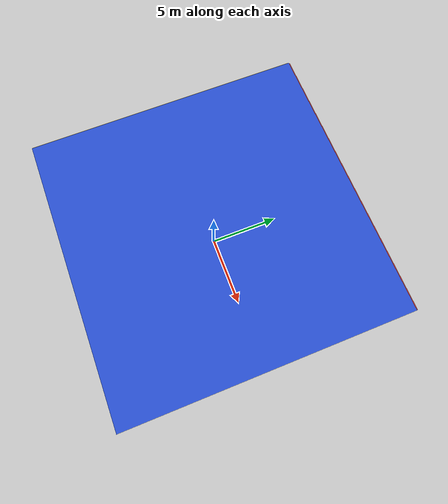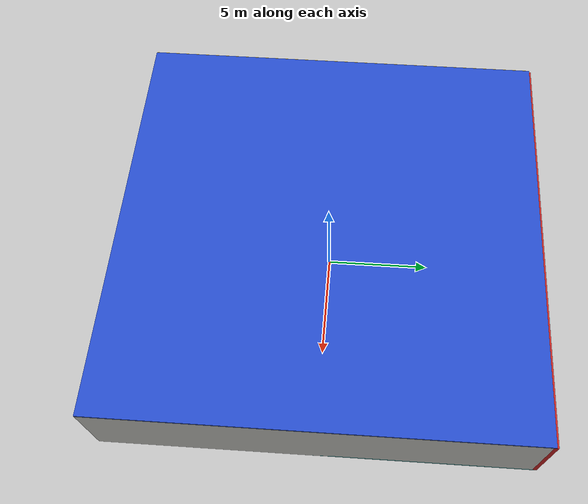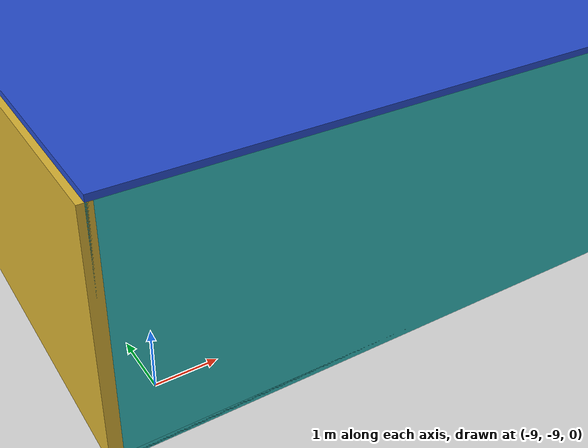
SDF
<sdf version="1.4">
 <world name="default">
  <physics type="ode">
   <max_step_size>0.001</max_step_size>
   <real_time_factor>1</real_time_factor>
   <real_time_update_rate>1000</real_time_update_rate>
   <gravity>0 0 -9.8</gravity>
  </physics>
  <scene><ambient>0.4 0.4 0.4 1</ambient><background>0.7 0.7 0.7 1</background><shadows>1</shadows></scene>
  <model name="Surrounding">
   <static>1</static>
   <link name="Ceiling">
    <collision name="Ceiling_Collision"><geometry><box><size>20 20 0.1</size></box></geometry></collision>
    <visual name="Ceiling_Visual">
     <geometry><box><size>20 20 0.1</size></box></geometry>
     <material>
      <script><uri>file://media/materials/scripts/gazebo.material</uri><name>Gazebo/Blue</name></script>
     </material>
    </visual>
    <pose>0 0 4.05 0 0 0</pose>
   </link>
   <link name="Wall_South">
    <collision name="Wall_South_Collision">
     <geometry><box><size>20 0 4</size></box></geometry>
     <pose>0 0 2 0 -0 0</pose>
    </collision>
    <visual name="Wall_South_Visual">
     <pose>0 0 2 0 -0 0</pose>
     <geometry><box><size>20 0 4</size></box></geometry>
     <material>
      <script><uri>file://media/materials/scripts/gazebo.material</uri><name>Gazebo/TurquoiseGlow</name></script>
     </material>
    </visual>
    <velocity_decay><linear>0</linear><angular>0</angular></velocity_decay>
    <pose>0 -10 0 0 -0 0</pose>
   </link>
   <link name="Wall_East">
    <collision name="Wall_21_Collision">
     <geometry><box><size>20 0 4</size></box></geometry>
     <pose>0 0 2 0 -0 0</pose>
    </collision>
    <visual name="Wall_21_Visual">
     <pose>0 0 2 0 -0 0</pose>
     <geometry><box><size>20 0 4</size></box></geometry>
     <material>
      <script><uri>file://media/materials/scripts/gazebo.material</uri><name>Gazebo/CeilingTiled</name></script>
     </material>
    </visual>
    <velocity_decay><linear>0</linear><angular>0</angular></velocity_decay>
    <pose>10 0 0 0 -0 1.5708</pose>
   </link>
   <link name="Wall_North">
    <collision name="Wall_22_Collision">
     <geometry><box><size>20 0.2 4</size></box></geometry>
     <pose>0 0 2 0 -0 0</pose>
    </collision>
    <visual name="Wall_22_Visual">
     <pose>0 0 2 0 -0 0</pose>
     <geometry><box><size>20 0.2 4</size></box></geometry>
     <material>
      <script><uri>file://media/materials/scripts/gazebo.material</uri><name>Gazebo/Red</name></script>
     </material>
    </visual>
    <velocity_decay><linear>0</linear><angular>0</angular></velocity_decay>
    <pose>0 10 0 0 -0 0</pose>
   </link>
   <link name="Wall_West">
    <collision name="Wall_23_Collision">
     <geometry><box><size>20 0.2 4</size></box></geometry>
     <pose>0 0 2 0 -0 0</pose>
    </collision>
    <visual name="Wall_23_Visual">
     <pose>0 0 2 0 -0 0</pose>
     <geometry><box><size>20 0.2 4</size></box></geometry>
     <material>
      <script><uri>file://media/materials/scripts/gazebo.material</uri><name>Gazebo/Gold</name></script>
     </material>
    </visual>
    <velocity_decay><linear>0</linear><angular>0</angular></velocity_decay>
    <pose>-10 0 0 0 0 -1.5708</pose>
   </link>
   <link name="Ground_link">
    <collision name="collision">
     <pose>0 0 .05 0 -0 0</pose>
     <geometry><box><size>20 20 0.1</size></box></geometry>
    </collision>
    <visual name="visual">
     <pose>0 0 .05 0 -0 0</pose>
     <geometry><box><size>20 20 0.1</size></box></geometry>
     <material>
      <script><uri>file://media/materials/scripts/gazebo.material</uri><name>Gazebo/Turquoise</name></script>
     </material>
    </visual>
   </link>
   <static>1</static>
  </model>
  <spherical_coordinates>
   <surface_model>EARTH_WGS84</surface_model>
   <latitude_deg>0</latitude_deg>
   <longitude_deg>0</longitude_deg>
   <elevation>0</elevation>
   <heading_deg>0</heading_deg>
  </spherical_coordinates>
  <light name="lightball_0" type="diffuse">
   <diffuse>0.8 0.8 0.8 1</diffuse>
   <specular>0.2 0.2 0.2 1</specular>
   <attenuation>
    <range>100</range>
    <constant>0.7</constant>
    <linear>0.01</linear>
    <quadratic>0.001</quadratic>
   </attenuation>
   <direction>-0.5 0.1 -0.9</direction>
   <pose>6.22918351982 -9.0889660355 2.44730647932 0 0 0</pose>
  </light>
  <light name="lightball_1" type="diffuse">
   <diffuse>0.8 0.8 0.8 1</diffuse>
   <specular>0.2 0.2 0.2 1</specular>
   <attenuation>
    <range>100</range>
    <constant>0.7</constant>
    <linear>0.01</linear>
    <quadratic>0.001</quadratic>
   </attenuation>
   <direction>-0.5 0.1 -0.9</direction>
   <pose>4.54903164071 -5.56604663475 1.23913846551 0 0 0</pose>
  </light>
  <light name="lightball_2" type="diffuse">
   <diffuse>0.8 0.8 0.8 1</diffuse>
   <specular>0.2 0.2 0.2 1</specular>
   <attenuation>
    <range>100</range>
    <constant>0.7</constant>
    <linear>0.01</linear>
    <quadratic>0.001</quadratic>
   </attenuation>
   <direction>-0.5 0.1 -0.9</direction>
   <pose>-5.59268135952 -9.85032021462 0.783360590576 0 0 0</pose>
  </light>
  <include>
   <uri>model://textured_shapes</uri>
   <pose>-3.7097408971 -4.18812025201 0 0 0 2.23384962103</pose>
  </include>
  <include>
   <uri>model://construction_cone</uri>
   <pose>4.66448351575 -1.55560116107 0 0 0 2.6489625712</pose>
  </include>
 </world>
</sdf>

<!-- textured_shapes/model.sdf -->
<sdf version="1.6">
  <model name="textured_shapes">
    <pose>0 0 0.5 0 0 0</pose>
    <link name="box">
      <pose>0 -1.5 0 0 0 0</pose>
      <collision name="collision">
        <geometry>
          <box>
            <size>1 1 1</size>
          </box>
        </geometry>
      </collision>
      <visual name="visual">
        <geometry>
          <box>
            <size>1 1 1</size>
          </box>
        </geometry>
        <material>
          <script>
            <uri>model://../model_source/models/textured_shapes/materials/scripts</uri>
            <uri>model://../model_source/models/textured_shapes/materials/textures</uri>
            <name>TexturedShape/Squares</name>
          </script>
        </material>
      </visual>
    </link>
    <link name="sphere">
      <collision name="collision">
        <geometry>
          <sphere>
            <radius>0.5</radius>
          </sphere>
        </geometry>
      </collision>
      <visual name="visual">
        <geometry>
          <sphere>
            <radius>0.5</radius>
          </sphere>
        </geometry>
        <material>
          <script>
            <uri>model://../model_source/models/textured_shapes/materials/scripts</uri>
            <uri>model://../model_source/models/textured_shapes/materials/textures</uri>
            <name>TexturedShape/Squares</name>
          </script>
        </material>
      </visual>
    </link>
    <link name="cylinder">
      <pose>0 1.5 0 0 0 0</pose>
      <collision name="collision">
        <geometry>
          <cylinder>
            <radius>0.5</radius>
            <length>1</length>
          </cylinder>
        </geometry>
      </collision>
      <visual name="visual">
        <geometry>
          <cylinder>
            <radius>0.5</radius>
            <length>1</length>
          </cylinder>
        </geometry>
        <material>
          <script>
            <uri>model://../model_source/models/textured_shapes/materials/scripts</uri>
            <uri>model://../model_source/models/textured_shapes/materials/textures</uri>
            <name>TexturedShape/Squares</name>
          </script>
        </material>
      </visual>
    </link>
  </model>
</sdf>

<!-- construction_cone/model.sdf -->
<sdf version="1.5">
  <model name="Construction Cone">
    <link name="link">
      <collision name="collision">
        <geometry>
          <mesh>
            <scale>10 10 10</scale>
            <uri>file://isr-testbed/construction_cone/meshes/construction_cone.dae</uri>
          </mesh>
        </geometry>
      </collision>
      <visual name="visual">
        <geometry>
          <mesh>
            <scale>10 10 10</scale>
            <uri>file://isr-testbed/construction_cone/meshes/construction_cone.dae</uri>
          </mesh>
        </geometry>
      </visual>
    </link>
  </model>
</sdf>
